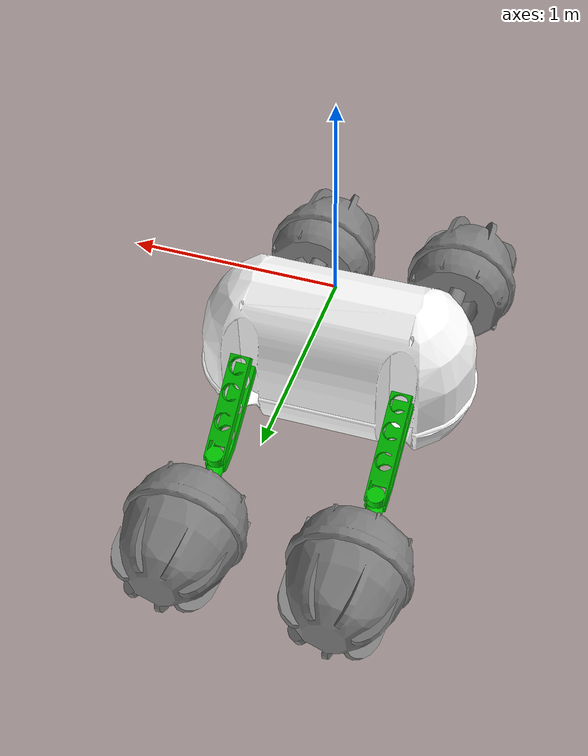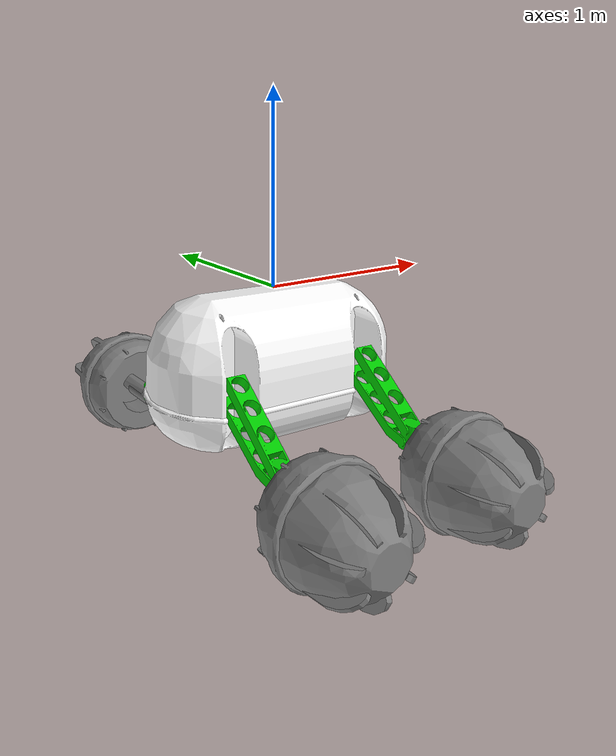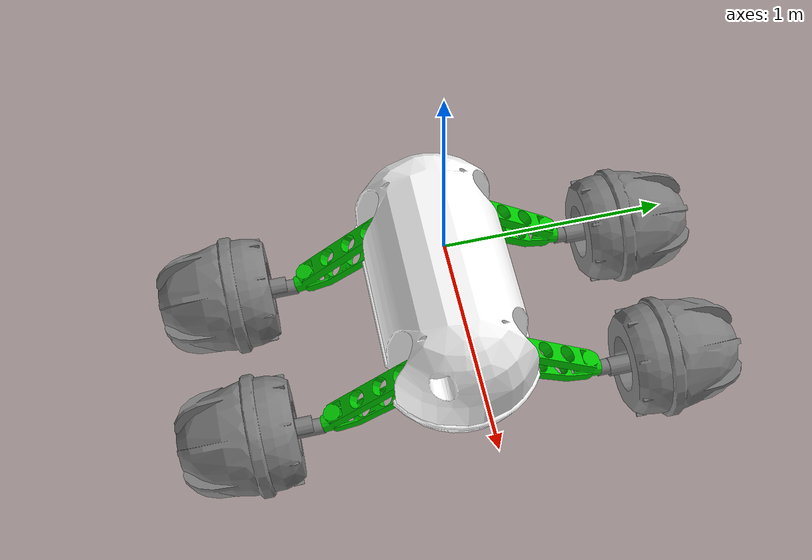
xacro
<?xml version="1.0"?>
<robot name="laser_rahcm_visualization" xmlns:xacro="http://ros.org/wiki/xacro">

  <xacro:include filename="base.urdf.xacro"/>
  <xacro:include filename="arm.urdf.xacro"/>
  <xacro:include filename="wheel_arm_joint.urdf.xacro"/>
  <xacro:include filename="wheel.urdf.xacro"/>

  <!-- Define materiais -->
  <material name="gray">
    <color rgba="0.5 0.5 0.5 1.0"/>
  </material>
  <material name="black">
    <color rgba="0.0 0.0 0.0 1.0"/>
  </material>
  <material name="green">
    <color rgba="0.0 0.8 0.0 1.0"/>
  </material>
  <material name="white">
    <color rgba="1.0 1.0 1.0 1.0"/>
  </material>

  <xacro:base name="base"/>

  <xacro:arm name="arm_rear_left" parent="base_link" xyz="-0.4 0.2 -0.4" rpy="0 -0.8 1.5708"/>
  <xacro:joint_arm name="arm_joint_wheel_rear_left" parent="arm_rear_left" xyz="0.16 0 -0.68" rpy="-0.80165 0 -1.5708"/>
  <xacro:wheel name="wheel_rear_left" parent="arm_joint_wheel_rear_left" xyz="0 0.25 0" rpy="0 0 0"/>

  <xacro:arm name="arm_rear_right" parent="base_link" xyz="-0.4 -0.2 -0.4" rpy="0 -0.8 -1.57"/>
  <xacro:joint_arm name="arm_joint_wheel_rear_right" parent="arm_rear_right" xyz="0.16 0 -0.68" rpy="0.80165 0 1.5708"/>
  <xacro:wheel name="wheel_rear_right" parent="arm_joint_wheel_rear_right" xyz="0 -0.25 0" rpy="0 0 3.14159"/>

  <xacro:arm name="arm_front_left" parent="base_link" xyz="0.4 0.2 -0.4" rpy="0 -0.8 1.5708"/>
  <xacro:joint_arm name="arm_joint_wheel_front_left" parent="arm_front_left" xyz="0.16 0 -0.68" rpy="-0.80165 0 -1.5708"/>
  <xacro:wheel name="wheel_front_left" parent="arm_joint_wheel_front_left" xyz="0 0.25 0" rpy="0 0 0"/>

  <xacro:arm name="arm_front_right" parent="base_link" xyz="0.4 -0.2 -0.4" rpy="0 -0.8 -1.5708"/>
  <xacro:joint_arm name="arm_joint_wheel_front_right" parent="arm_front_right" xyz="0.16 0 -0.68" rpy="0.80165 0 1.5708"/>
  <xacro:wheel name="wheel_front_right" parent="arm_joint_wheel_front_right" xyz="0 -0.25 0" rpy="0 0 3.14159"/>

  <gazebo>
    <plugin name="wamv_gazebo_thrust" filename="libusv_gazebo_thrust_plugin.so">
        <cmdTimeout>1.0</cmdTimeout>
        <publisherRate>100.0</publisherRate>
        <robotNamespace>chico_mendes</robotNamespace>

        <!-- right front wheel thruster -->
        <thruster>
          <linkName>arm_joint_wheel_front_right</linkName>
          <propJointName>joint_wheel_front_right</propJointName>
          <engineJointName>joint_joint_arm_front_right</engineJointName>
          <cmdTopic>thruster/right_front_wheel_cmd</cmdTopic>
          <angleTopic>right_wheel_angle</angleTopic>
          <enableAngle>false</enableAngle>

          <mappingType>0</mappingType>
          <maxCmd>1.0</maxCmd>
          <maxForceFwd>500.0</maxForceFwd>
          <maxForceRev>-250.0</maxForceRev>
        </thruster>

        <!-- left front wheel thruster -->
        <thruster>
          <linkName>arm_joint_wheel_front_left</linkName>
          <propJointName>joint_wheel_front_left</propJointName>
          <engineJointName>joint_joint_arm_front_left</engineJointName>
          <cmdTopic>thruster/left_front_wheel_cmd</cmdTopic>
          <angleTopic>left_wheel_angle</angleTopic>
          <enableAngle>false</enableAngle>

          <mappingType>0</mappingType>
          <maxCmd>1.0</maxCmd>
          <maxForceFwd>500.0</maxForceFwd>
          <maxForceRev>-250.0</maxForceRev>
        </thruster>

        <!-- right rear wheel thruster -->
        <thruster>
          <linkName>arm_joint_wheel_rear_right</linkName>
          <propJointName>joint_wheel_rear_right</propJointName>
          <engineJointName>joint_joint_arm_rear_right</engineJointName>
          <cmdTopic>thruster/right_rear_wheel_cmd</cmdTopic>
          <angleTopic>right_wheel_angle</angleTopic>
          <enableAngle>false</enableAngle>

          <mappingType>0</mappingType>
          <maxCmd>1.0</maxCmd>
          <maxForceFwd>500.0</maxForceFwd>
          <maxForceRev>-250.0</maxForceRev>
        </thruster>

        <!-- left rear wheel thruster -->
        <thruster>
          <linkName>arm_joint_wheel_rear_left</linkName>
          <propJointName>joint_wheel_rear_left</propJointName>
          <engineJointName>joint_joint_arm_rear_left</engineJointName>
          <cmdTopic>thruster/left_rear_wheel_cmd</cmdTopic>
          <angleTopic>left_wheel_angle</angleTopic>
          <enableAngle>false</enableAngle>

          <mappingType>0</mappingType>
          <maxCmd>1.0</maxCmd>
          <maxForceFwd>500.0</maxForceFwd>
          <maxForceRev>-250.0</maxForceRev>
        </thruster>
    </plugin>
  </gazebo>
</robot>

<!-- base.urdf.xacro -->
<robot xmlns:xacro="http://ros.org/wiki/xacro">

  <!-- Base do robô -->
  <xacro:macro name="base" params="name">
    <link name="base_link">
      <visual>
      <origin xyz="0 0 -0.75" rpy="0 0 1.57"/>
        <geometry>
          <mesh filename="package://laser_rahcm_visualization/meshes/chassi.dae" scale="0.0113 0.011 0.0125"/>
        </geometry>
        <material name="white"/>
      </visual>

      <collision>
        <origin xyz="0 0 -0.5" rpy="0 0 0"/>
        <geometry>
          <box size="1.4 0.7 0.7"/>
        </geometry>
      </collision>

      <inertial>
        <origin xyz="0 0 -0.5" rpy="0 0 0"/>
        <mass value="50"/>
        <inertia
          ixx="${(1.0/12.0) * 50.0 * ((1.4*1.4) + (0.7*0.7))}"
          iyy="${(1.0/12.0) * 50.0 * ((0.7*0.7) + (0.7*0.7))}"
          izz="${(1.0/12.0) * 50.0 * ((0.7*0.7) + (1.4*1.4))}"
          ixy="0.0" ixz="0.0" iyz="0.0"/>
      </inertial>
    </link>
  </xacro:macro>

</robot>

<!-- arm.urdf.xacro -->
<robot xmlns:xacro="http://ros.org/wiki/xacro">

  <!-- Braço do robô -->
   <xacro:macro name="arm" params="name parent xyz rpy">
    <link name="${name}">
      <visual>
        <origin xyz="0.1 0 -0.6" rpy="0 -0.5 0"/>
        <geometry>
          <mesh filename="package://laser_rahcm_visualization/meshes/arm.stl" scale="0.01 0.01 0.01"/>
        </geometry>
        <material name="green"/>
      </visual>

      <collision>
        <origin xyz="0.05 0 -0.25" rpy="0 0 0.6"/>
        <geometry>
          <cylinder length="0.5" radius="0.05"/>
        </geometry>
      </collision>

      <inertial>
        <origin xyz="0.05 0 -0.25" rpy="0 0 0.6"/>
        <mass value="12.5"/>
        <inertia
          ixx="${(1.0/12.0) * 12.5 * (3*((0.05*0.05)) + 0.5*0.5)}"
          iyy="${(1.0/12.0) * 12.5 * (3*((0.05*0.05)) + 0.5*0.5)}"
          izz="${(1.0/2.0) * 12.5 * ((0.05*0.05))}"
          ixy="0.0" ixz="0.0" iyz="0.0"/>
      </inertial>
    </link>

    <joint name="joint_${name}" type="fixed">
      <parent link="${parent}"/>
      <child link="${name}"/>
      <origin xyz="${xyz}" rpy="${rpy}"/>
    </joint>
  </xacro:macro>

</robot>

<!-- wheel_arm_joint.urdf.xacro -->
<robot xmlns:xacro="http://ros.org/wiki/xacro">

  <!-- junta entre roda e braço -->
   <xacro:macro name="joint_arm" params="name parent xyz rpy">
    <link name="${name}">
      <visual>
        <origin xyz="0 0 0" rpy="1.5708 0 0"/>
        <geometry>
          <cylinder length="0.23" radius="0.04"/>
        </geometry>
        <material name="gray"/>
      </visual>

      <collision>
        <origin xyz="0 0 0" rpy="1.5708 0 0"/>
        <geometry>
          <cylinder length="0.23" radius="0.04"/>
        </geometry>
      </collision>

      <inertial>
        <origin xyz="0 0 0" rpy="1.5708 0 0"/>
        <mass value="2.0"/>
        <inertia
          ixx="${(1.0/12.0) * 2.0 * (3*(0.04*0.04) + 0.23*0.23)}"
          iyy="${(1.0/12.0) * 2.0 * (3*(0.04*0.04) + 0.23*0.23)}"
          izz="${(1.0/2.0) * 2.0 * (0.04*0.04)}"
          ixy="0.0" ixz="0.0" iyz="0.0"/>
      </inertial>
    </link>

    <joint name="joint_${name}" type="revolute">
      <parent link="${parent}"/>
      <child link="${name}"/>
      <origin xyz="${xyz}" rpy="${rpy}"/>
      <axis xyz="1 0 0"/>
      <limit effort="10.0" velocity="1.0" lower="0" upper="0"/>
      <dynamics damping="5.0" friction="5.0"/>
    </joint>
  </xacro:macro>

</robot>

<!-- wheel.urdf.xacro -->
<robot xmlns:xacro="http://ros.org/wiki/xacro">

  <!-- Roda do robô  -->
  <xacro:macro name="wheel" params="name parent xyz rpy">

    <!-- Link da roda -->
    <link name="${name}">
      <visual>
        <origin xyz="0 0 0" rpy="1.5708 0 0"/>
        <geometry>
          <mesh filename="package://laser_rahcm_visualization/meshes/wheel.dae" scale="0.0093 0.0093 0.013"/>
        </geometry>
        <material name="gray"/>
      </visual>

      <collision>
        <origin xyz="0 0.03 0" rpy="1.5708 0 0"/>
        <geometry>
          <cylinder radius="0.3" length="0.6"/>
        </geometry>
      </collision>

      <inertial>
        <origin xyz="0 0.03 0" rpy="1.5708 0 0"/>
        <mass value="12.5"/>
        <inertia
          ixx="${(1.0/12.0) * 12.5 * (3*(0.3*0.3) + 0.6*0.6)}"
          iyy="${(1.0/12.0) * 12.5 * (3*(0.3*0.3) + 0.6*0.6)}"
          izz="${(1.0/2.0) * 12.5 * (0.3*0.3)}"
          ixy="0.0" ixz="0.0" iyz="0.0"/>
      </inertial>
    </link>

    <joint name="joint_${name}" type="continuous">
      <parent link="${parent}"/>
      <child  link="${name}"/>
      <origin xyz="${xyz}" rpy="${rpy}"/>
      <axis  xyz="0 1.5708 0"/>
      <limit  effort="5.0" velocity="10.0"/>
      <dynamics damping="0.1" friction="0.1"/>
    </joint>

    <gazebo>
      <plugin name="usv_dynamics_plugin" filename="libusv_gazebo_dynamics_plugin.so">
        <bodyName bodyName="${name}"/>
        <!-- Must be same as the ocean model!-->
        <waterLevel>0.9</waterLevel>
        <waterDensity>997.8</waterDensity>
        <!-- Added mass -->
        <xDotU>0.0</xDotU>
        <yDotV>0.0</yDotV>
        <nDotR>0.0</nDotR>

        <!-- Linear and quadratic drag -->
        <xU>0.0057</xU>
        <xUU>116.0</xUU>
        <yV>0.0057</yV>
        <yVV>116.0</yVV>
        <zW>116.0</zW>
        <kP>100.0</kP>
        <mQ>100.0</mQ>
        <nR>100.0</nR>
        <nRR>0.0</nRR>

        <!-- General dimensions -->
        <hullRadius>0.3</hullRadius>
        <boatWidth>0.55</boatWidth>
        <boatLength>0.6</boatLength>

        <!-- Length discretization, AKA, "N" -->
        <length_n>1</length_n>

        <!-- Wave model -->
        <wave_model>waves</wave_model>
      </plugin>
    </gazebo>

  </xacro:macro>

</robot>
